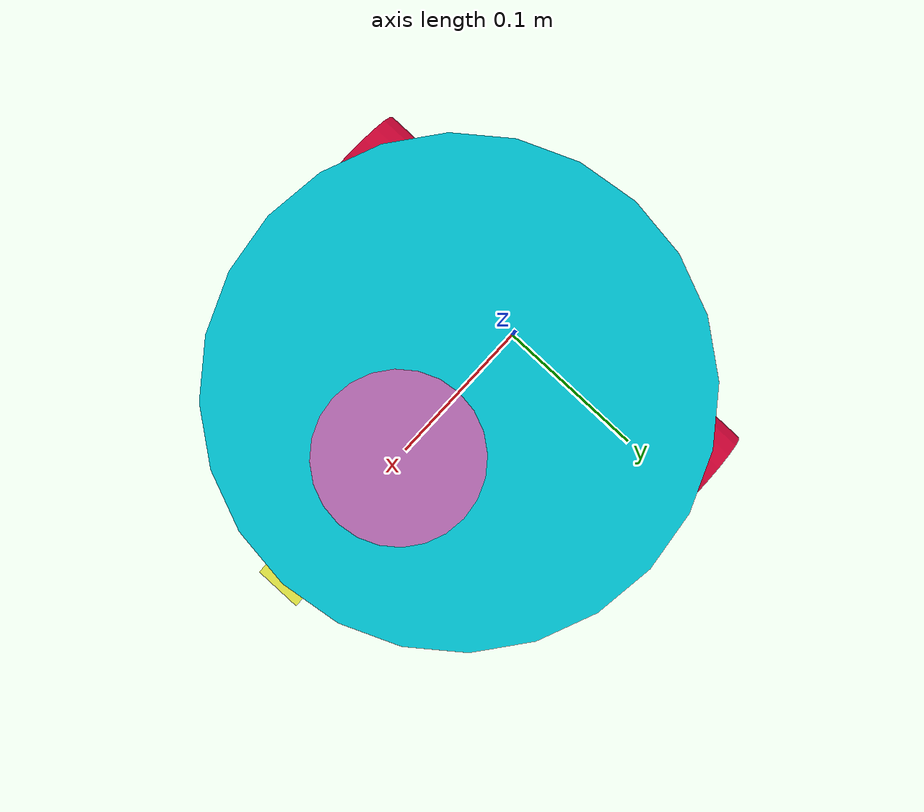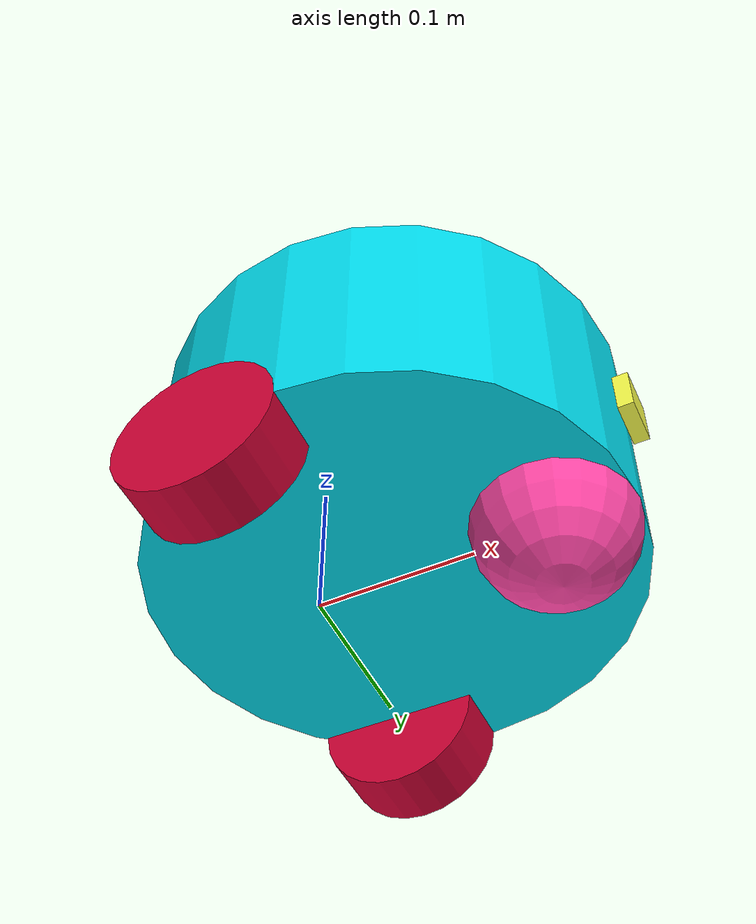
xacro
<?xml version="1.0"?>
<robot xmlns:xacro="http://www.ros.org/wiki/xacro"  name="robot">

    <xacro:include filename="robot_core.xacro"/>
    <xacro:include filename="gazebo.xacro"/>
    <xacro:include filename="lidar.xacro"/>
    <xacro:include filename="depth_camera.xacro"/>

</robot>

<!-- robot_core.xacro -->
<robot xmlns:xacro="http://www.ros.org/wiki/xacro">

    <xacro:include filename="materials.urdf.xacro"/>
    <xacro:include filename="inertial_macros.xacro"/>

    <link name="base_link">
    </link>

    <joint name="chassis_joint" type="fixed">
        <parent link="base_link"/>
        <child link="chassis_link"/>
        <origin xyz="-0.1 0 0"/>
    </joint>

    <link name="chassis_link">
        <visual>
            <origin xyz="0.15 0 0.075"/>
            <geometry>
                <cylinder radius="0.15" length="0.15"/>
            </geometry>
            <material name="aquablue"/>
        </visual>
        <collision>
            <origin xyz="0.15 0 0.075"/>
            <geometry>
                <cylinder radius="0.15" length="0.15"/>
            </geometry>
        </collision>
        <xacro:inertial_cylinder mass="0.5" radius="0.15" length="0.15">
            <origin xyz="0.15 0 0.075" rpy="0 0 0"/>
        </xacro:inertial_cylinder>
    </link>

    <gazebo reference="chassis_link">
        <material>Gazebo/Red</material>
    </gazebo>

    <joint name="left_wheel_joint" type="continuous">
        <parent link="base_link"/>
        <child link="left_wheel_link"/>
        <origin xyz="0 0.13 0" rpy="-${pi/2} 0 0"/>
        <axis xyz="0 0 1"/>
    </joint>

    <link name="left_wheel_link">
        <visual>
        <geometry>
            <cylinder radius="0.05" length="0.04"/>
        </geometry>
        <material name="cherry"/>
        </visual>
        <collision>
        <geometry>
            <cylinder radius="0.05" length="0.04"/>
        </geometry>
        </collision>
        <xacro:inertial_cylinder mass="0.1" radius="0.05" length="0.04">
            <origin xyz="0 0 0" rpy="0 0 0"/>
        </xacro:inertial_cylinder>
    </link>

    <gazebo reference="left_wheel_link">
        <material>Gazebo/Yellow</material>
    </gazebo>

    <joint name="right_wheel_joint" type="continuous">
        <parent link="base_link"/>
        <child link="right_wheel_link"/>
        <origin xyz="0 -0.13 0" rpy="${pi/2} 0 0"/>
        <axis xyz="0 0 -1"/>
    </joint>

    <link name="right_wheel_link">
        <visual>
        <geometry>
            <cylinder radius="0.05" length="0.04"/>
        </geometry>
        <material name="cherry"/>
        </visual>
        <collision>
        <geometry>
            <cylinder radius="0.05" length="0.04"/>
        </geometry>
        </collision>
        <xacro:inertial_cylinder mass="0.1" radius="0.05" length="0.04">
            <origin xyz="0 0 0" rpy="0 0 0"/>
        </xacro:inertial_cylinder>
    </link>

    <gazebo reference="right_wheel_link">
        <material>Gazebo/Yellow</material>
    </gazebo>

    <joint name="caster_joint" type="fixed">
        <parent link="base_link"/>
        <child link ="caster_link"/>
        <origin xyz="0.15 0 0"/>
    </joint>

    <link name="caster_link">
        <visual>
        <geometry>
            <sphere radius="0.05"/>
        </geometry>
        <material name="barbiepink"/>
        </visual>
        <collision>
        <geometry>
            <sphere radius="0.05"/>
        </geometry>
        </collision>
        <xacro:inertial_sphere mass="0.1" radius="0.05">
            <origin xyz="0 0 0" rpy="0 0 0"/>
        </xacro:inertial_sphere>
    </link>

    <gazebo reference="caster_link">
        <material>Gazebo/Black</material>
        <mu1 value="0.000001"/>
        <mu2 value="0.00001"/>
    </gazebo>

</robot>

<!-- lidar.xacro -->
<robot xmlns:xacro="http://www.ros.org/wiki/xacro" >

    <joint name="laser_joint" type="fixed">
        <parent link="chassis_link"/>
        <child link="laser_frame"/>
        <origin xyz="0.2 0 0.17" rpy="0 0 0"/>
    </joint>

    <link name="laser_frame">
        <visual>
            <geometry>
                <cylinder radius="0.05" length="0.04"/>
            </geometry>
            <material name="orchid"/>
        </visual>
        <collision>
            <geometry>
                <cylinder radius="0.05" length="0.04"/>
            </geometry>
        </collision>
        <xacro:inertial_cylinder mass="0.1" length="0.04" radius="0.05">
            <origin xyz="0 0 0" rpy="0 0 0"/>
        </xacro:inertial_cylinder>
    </link>

    <gazebo reference="laser_frame">
        <material>Gazebo/Green</material>

        <sensor name="laser" type="ray">
            <pose> 0 0 0 0 0 0 </pose>
            <visualize>true</visualize>
            <update_rate>10</update_rate>
            <ray>
                <scan>
                    <horizontal>
                        <samples>360</samples>
                        <min_angle>-3.14</min_angle>
                        <max_angle>3.14</max_angle>
                    </horizontal>
                </scan>
                <range>
                    <min>0.1</min>
                    <max>12</max>
                </range>
            </ray>
            <plugin name="laser_controller" filename="libgazebo_ros_ray_sensor.so">
                <ros>
                    <argument>~/out:=scan</argument>
                </ros>
                <output_type>sensor_msgs/LaserScan</output_type>
                <frame_name>laser_frame</frame_name>
            </plugin>
        </sensor>
    </gazebo>

</robot>

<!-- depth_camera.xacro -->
<robot xmlns:xacro="http://www.ros.org/wiki/xacro" >

    <joint name="camera_joint" type="fixed">
        <parent link="chassis_link"/>
        <child link="camera_link"/>
        <origin xyz="0.305 0 0.08" rpy="0 0 0"/>
    </joint>

    <link name="camera_link">
        <visual>
            <geometry>
                <box size="0.010 0.03 0.03"/>
            </geometry>
            <material name="bananayellow"/>
        </visual>
    </link>

    <joint name="camera_optical_joint" type="fixed">
        <parent link="camera_link"/>
        <child link="camera_link_optical"/>
        <origin xyz="0 0 0" rpy="${-pi/2} 0 ${-pi/2}"/>
    </joint>

    <link name="camera_link_optical"></link>

    <gazebo reference="camera_link">
        <material>Gazebo/Yellow</material>

        <sensor name="camera" type="depth">
            <pose> 0 0 0 0 0 0 </pose>
            <visualize>true</visualize>
            <update_rate>10</update_rate>
            <always_on>true</always_on>
            <camera>
                <horizontal_fov>1.089</horizontal_fov>
                <image>
                    <format>B8G8R8 </format>
                    <width>640</width>
                    <height>480</height>
                </image>
                <clip>
                    <near>0.05</near>
                    <far>8.0</far>
                </clip>
            </camera>
            <plugin name="depth_camera_controller" filename="libgazebo_ros_camera.so">
                <camera_name>depth_camera</camera_name>
                <image_topic_name>image_raw</image_topic_name> <!-- RGB -->
                <depth_image_topic_name>depth/image_raw</depth_image_topic_name> <!-- Depth -->
                <depth_info_topic_name>depth/camera_info</depth_info_topic_name>
                <frame_name>camera_link_optical</frame_name>
                <min_depth>0.1</min_depth>
                <max_depth>100</max_depth>

            </plugin>
        </sensor>
    </gazebo>

</robot>
